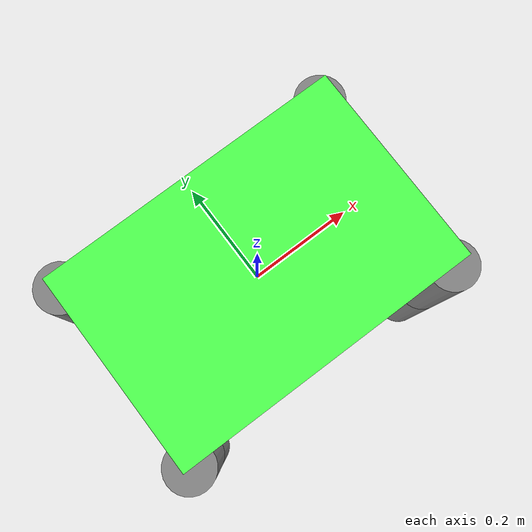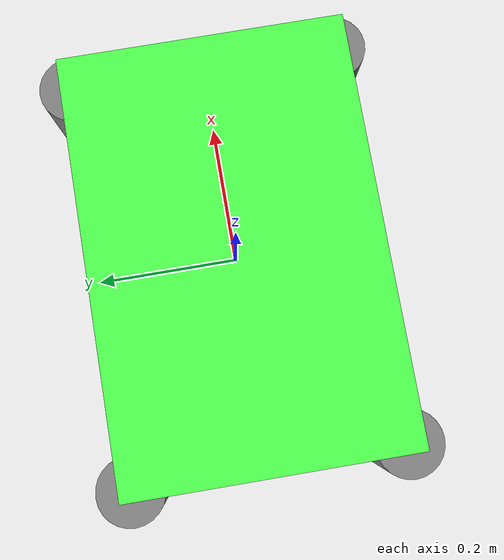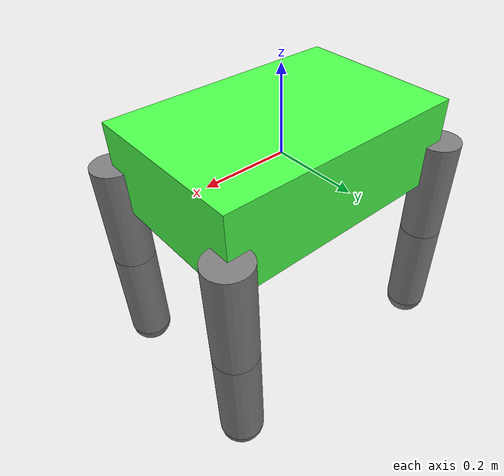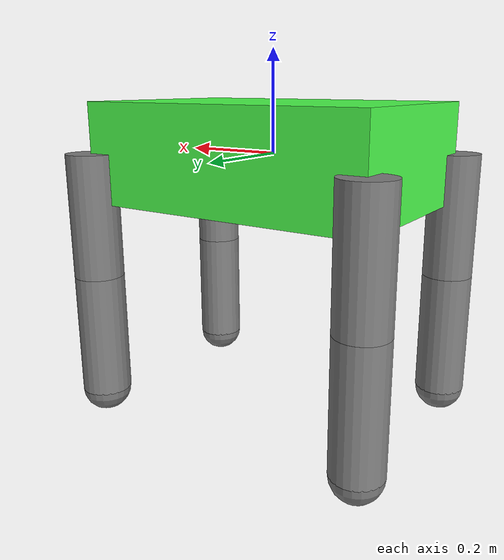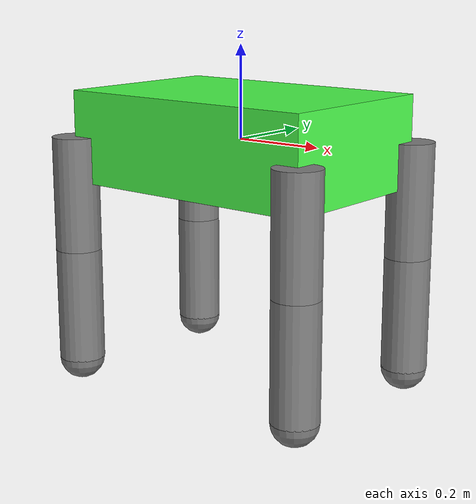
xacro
<?xml version="1.0"?>
<robot name="my_robot" xmlns:xacro="http://www.ros.org/wiki/xacro">

    <!-- INCLUDES: properties -->
    <xacro:include filename="properties/inertia_properties.xacro" />
    <xacro:include filename="properties/materials.xacro" />

    <!-- INCLUDES: components -->
    <xacro:include filename="components/2DoF_leg.xacro" />
    <xacro:include filename="components/body.xacro" />

    <!-- DIMENSIONS -->
    <xacro:property name="body_length" value = "0.6"/>
    <xacro:property name="body_width" value ="0.4"/>
    <xacro:property name="body_height" value="0.2"/>
    <xacro:property name="leg_radius" value ="0.05"/>
    <xacro:property name="upper_leg_length" value ="0.25"/>
    <xacro:property name="lower_leg_length" value ="0.25"/>
    <xacro:property name="feet_radius" value ="0.05"/>

    <xacro:body_link
    prefix="main"
    length="${body_length}"
    width="${body_width}"
    height="${body_height}"/>

    <xacro:two_DoF_leg
    prefix="RR"
    parent_link="main_body_link"
    x_offset="${-body_length/2.0}"
    y_offset="${-body_width/2.0}"
    z_offset="0"
    radius="${leg_radius}"
    upper_length="${upper_leg_length}"
    lower_length="${lower_leg_length}"
    first_joint_min_lim="0"
    first_joint_max_lim="0"
    second_joint_min_lim="0"
    second_joint_max_lim="0"/>

    <xacro:two_DoF_leg
    prefix="RL"
    parent_link="main_body_link"
    x_offset="${-body_length/2.0}"
    y_offset="${ body_width/2.0}"
    z_offset="0"
    radius="${leg_radius}"
    upper_length="${upper_leg_length}"
    lower_length="${lower_leg_length}"
    first_joint_min_lim="0"
    first_joint_max_lim="0"
    second_joint_min_lim="0"
    second_joint_max_lim="0"/>

    <xacro:two_DoF_leg
    prefix="FR"
    parent_link="main_body_link"
    x_offset="${ body_length/2.0}"
    y_offset="${-body_width/2.0}"
    z_offset="0"
    radius="${leg_radius}"
    upper_length="${upper_leg_length}"
    lower_length="${lower_leg_length}"
    first_joint_min_lim="0"
    first_joint_max_lim="0"
    second_joint_min_lim="0"
    second_joint_max_lim="0"/>

    <xacro:two_DoF_leg
    prefix="FL"
    parent_link="main_body_link"
    x_offset="${ body_length/2.0}"
    y_offset="${ body_width/2.0}"
    z_offset="0"
    radius="${leg_radius}"
    upper_length="${upper_leg_length}"
    lower_length="${lower_leg_length}"
    first_joint_min_lim="0"
    first_joint_max_lim="0"
    second_joint_min_lim="0"
    second_joint_max_lim="0"/>

    <link name="base_link"/>
    <joint name="std_joint" type="fixed">
        <parent link="base_link"/>
        <child link="main_body_link"/>
        <origin xyz = "0 0 0" rpy = "0 0 0"/>
    </joint>

</robot>

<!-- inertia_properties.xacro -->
<robot xmlns:xacro="http://www.ros.org/wiki/xacro">

    <xacro:macro name="box_inertia" params="m l w h xyz rpy">
        <inertial>
            <origin xyz="${xyz}" rpy="${rpy}"/>
            <mass value="${m}"/>
            <inertia ixx="${(m/12.0)*(h*h+l*l)}" ixy="0.0" ixz="0.0"
                    iyy="${(m/12.0)*(w*w+l*l)}" iyz="0.0"
                    izz="${(m/12.0)*(h*h+w*w)}"/>
        </inertial>
    </xacro:macro>

    <xacro:macro name="cylinder_inertia" params="m r h xyz rpy">
        <inertial>
            <origin xyz="${xyz}" rpy="${rpy}"/>
            <mass value="${m}"/>
            <inertia ixx="${(m/12.0)*(3*r*r+h*h)}" ixy="0.0" ixz="0.0"
                    iyy="${(m/12.0)*(3*r*r+h*h)}" iyz="0.0"
                    izz="${(m/2.0)*(r*r)}"/>
        </inertial>
    </xacro:macro>

    <xacro:macro name="sphere_inertia" params="m r xyz rpy">
        <inertial>
            <origin xyz="${xyz}" rpy="${rpy}"/>
            <mass value="${m}"/>
            <inertia ixx="${(2.0*m/5.0)*(r*r)}" ixy="0.0" ixz="0.0"
                    iyy="${(2.0*m/5.0)*(r*r)}" iyz="0.0"
                    izz="${(2.0*m/5.0)*(r*r)}"/>
        </inertial>
    </xacro:macro>

</robot>

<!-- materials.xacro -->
<robot xmlns:xacro="http://www.ros.org/wiki/xacro">

    <material name="green">
        <color rgba="0.3 1 0.3 1"/>
    </material>

    <material name="grey">
        <color rgba="0.5 0.5 0.5 1"/>
    </material>

</robot>

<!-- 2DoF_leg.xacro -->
<robot name="my_robot" xmlns:xacro="http://www.ros.org/wiki/xacro">

    <xacro:macro name="two_DoF_leg" params="
    prefix
    parent_link
    x_offset
    y_offset
    z_offset
    radius
    upper_length
    lower_length
    first_joint_min_lim
    first_joint_max_lim
    second_joint_min_lim
    second_joint_max_lim">

        <link name="${prefix}_upper_leg_link">
            <visual>
                <geometry>
                    <cylinder radius="${radius}" length="${upper_length}"/>
                </geometry>
                <origin xyz="0 0 ${-upper_length/2.0}" rpy="0 0 0"/>
                <material name="grey"/>
            </visual>
            <collision>
                <geometry>
                    <cylinder radius="${radius}" length="${upper_length}"/>
                </geometry>
                <origin xyz="0 0 ${-upper_length/2.0}" rpy="0 0 0"/>
            </collision>
            <xacro:cylinder_inertia m="1.0" r="${radius}" h="${upper_length}"
                                     xyz="0 0 0" rpy="${pi/2.0} 0 0"/>
        </link>

        <link name="${prefix}_lower_leg_link">
            <visual>
                <geometry>
                    <cylinder radius="${radius}" length="${lower_length}"/>
                </geometry>
                <origin xyz="0 0 ${-lower_length/2.0}" rpy="0 0 0"/>
                <material name="grey"/>
            </visual>
            <collision>
                <geometry>
                    <cylinder radius="${radius}" length="${lower_length}"/>
                </geometry>
                <origin xyz="0 0 ${-lower_length/2.0}" rpy="0 0 0"/>
            </collision>
            <xacro:cylinder_inertia m="1.0" r="${radius}" h="${lower_length}"
                                     xyz="0 0 0" rpy="${pi/2.0} 0 0"/>
        </link>

        <link name = "${prefix}_foot_link">
            <visual>
                <geometry>
                    <sphere radius = "${radius}"/>
                    <origin xyz = "0 0 0" rpy = "0 0 0"/>
                </geometry>
                <material name="grey"/>
            </visual>
            <collision>
                <geometry>
                    <sphere radius = "${radius}"/>
                    <origin xyz = "0 0 0" rpy = "0 0 0"/>
                </geometry>
            </collision>
            <xacro:sphere_inertia m="0.5" r="${radius}"
                                xyz = "0 0 0" rpy = "0 0 0"/>
        </link>

        <joint name="${prefix}_upper_leg_joint" type="continuous">
            <parent link="${parent_link}"/>
            <child link="${prefix}_upper_leg_link"/>
            <origin xyz = "${x_offset} ${y_offset} ${z_offset}" rpy = "0 0 0"/>
            <axis xyz = "0 1 0"/>
        </joint>

        <joint name="${prefix}_lower_leg_joint" type="continuous">
            <parent link="${prefix}_upper_leg_link"/>
            <child link="${prefix}_lower_leg_link"/>
            <origin xyz = "0 0 ${-upper_length}" rpy = "0 0 0"/>
            <axis xyz = "0 1 0"/>
        </joint>

        <joint name="${prefix}_foot_joint" type="fixed">
            <parent link = "${prefix}_lower_leg_link"/>
            <child link = "${prefix}_foot_link"/>
            <origin xyz = "0 0 ${-lower_length}" rpy = "0 0 0"/>
        </joint>
    </xacro:macro>

</robot>

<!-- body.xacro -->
<robot name="my_robot" xmlns:xacro="http://www.ros.org/wiki/xacro">

    <xacro:macro name="body_link" params="
    prefix
    length
    width
    height">
        <link name="${prefix}_body_link">
            <visual>
                <geometry>
                    <box size="${length} ${width} ${height}"/>
                </geometry>
                <origin xyz="0 0 0" rpy="0 0 0"/>
                <material name="green"/>
            </visual>
            <collision>
                <geometry>
                    <box size="${length} ${width} ${height}"/>
                </geometry>
                <origin xyz="0 0 0" rpy="0 0 0"/>
            </collision>
            <xacro:box_inertia m="5.0" l="${length}" w="${width}" h="${height}"
                                xyz="0 0 0" rpy="0 0 0" />
        </link>

    </xacro:macro>
</robot>
